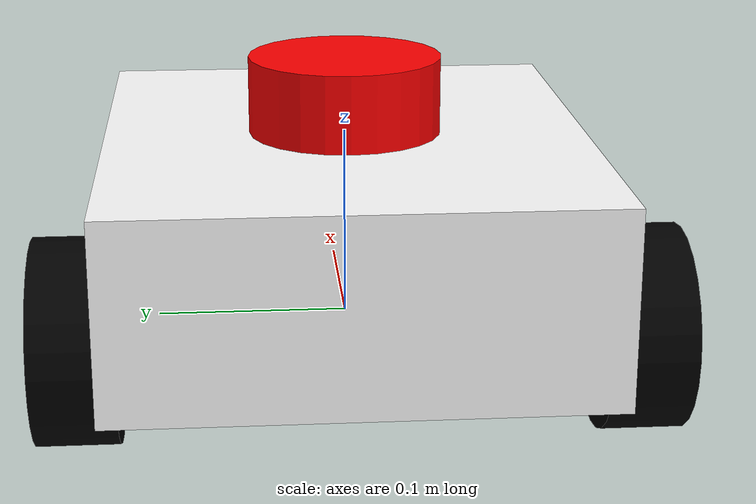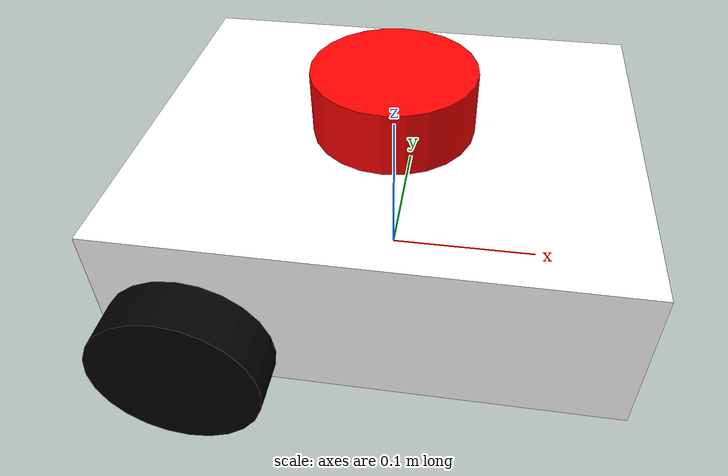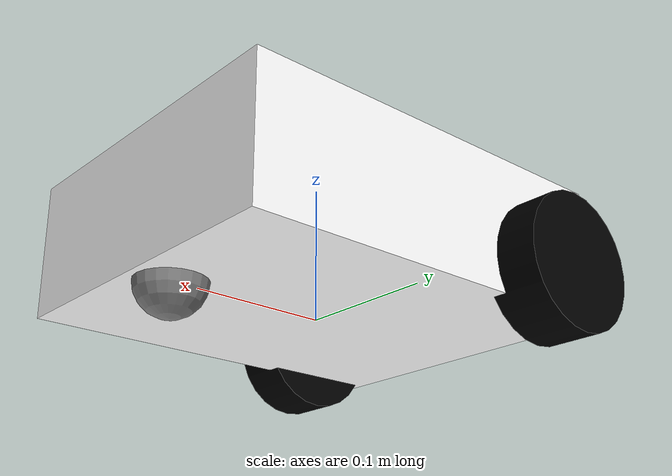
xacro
<?xml version="1.0"?>
<robot name="my_bot_no_encoder" xmlns:xacro="http://www.ros.org/wiki/xacro">

  <xacro:include filename="$(find my_bot)/description/inertial_macros.xacro"/>

  <!-- ═══════════════════════════════════════════════
       PROPERTIES
  ═══════════════════════════════════════════════ -->
  <!-- Chassis -->
  <xacro:property name="chassis_length"   value="0.30"/>
  <xacro:property name="chassis_width"    value="0.25"/>
  <xacro:property name="chassis_height"   value="0.10"/>
  <xacro:property name="chassis_mass"     value="1.5"/>

  <!-- Drive wheels -->
  <xacro:property name="wheel_radius"     value="0.05"/>
  <xacro:property name="wheel_width"      value="0.04"/>
  <xacro:property name="wheel_mass"       value="0.2"/>
  <xacro:property name="wheel_offset_x"  value="-0.1"/>
  <xacro:property name="wheel_offset_y"  value="0.135"/>   <!-- half chassis_width + wheel_width/2 -->
  <xacro:property name="wheel_offset_z"  value="-0.025"/>  <!-- chassis bottom - wheel_radius -->

  <!-- Caster -->
  <xacro:property name="caster_radius"    value="0.025"/>
  <xacro:property name="caster_mass"      value="0.05"/>
  <xacro:property name="caster_offset_x" value="0.12"/>
  <xacro:property name="caster_offset_z" value="-0.05"/>   <!-- -(wheel_radius - caster_radius) -->

  <!-- ═══════════════════════════════════════════════
       MATERIALS
  ═══════════════════════════════════════════════ -->
  <material name="white">
    <color rgba="1 1 1 1"/>
  </material>
  <material name="blue">
    <color rgba="0.2 0.2 1 1"/>
  </material>
  <material name="black">
    <color rgba="0 0 0 1"/>
  </material>
  <material name="red">
    <color rgba="1 0 0 1"/>
  </material>
  <material name="grey">
    <color rgba="0.5 0.5 0.5 1"/>
  </material>

  <!-- ═══════════════════════════════════════════════
       BASE FOOTPRINT  (ground-projected origin)
  ═══════════════════════════════════════════════ -->
  <link name="base_footprint"/>

  <joint name="base_footprint_joint" type="fixed">
    <parent link="base_footprint"/>
    <child  link="base_link"/>
    <!-- base_link origin sits at wheel-centre height above the ground -->
    <origin xyz="0 0 ${wheel_radius}" rpy="0 0 0"/>
  </joint>

  <!-- ═══════════════════════════════════════════════
       BASE LINK  (chassis)
  ═══════════════════════════════════════════════ -->
  <link name="base_link">
    <visual>
      <origin xyz="0 0 0" rpy="0 0 0"/>
      <geometry>
        <box size="${chassis_length} ${chassis_width} ${chassis_height}"/>
      </geometry>
      <material name="white"/>
    </visual>
    <collision>
      <origin xyz="0 0 0" rpy="0 0 0"/>
      <geometry>
        <box size="${chassis_length} ${chassis_width} ${chassis_height}"/>
      </geometry>
    </collision>
    <xacro:box_inertia m="${chassis_mass}"
                       l="${chassis_length}"
                       w="${chassis_width}"
                       h="${chassis_height}"/>
  </link>

  <gazebo reference="base_link">
    <material>Gazebo/White</material>
  </gazebo>

  <xacro:macro name="drive_wheel" params="prefix reflect">

    <joint name="${prefix}_wheel_joint" type="continuous">
      <parent link="base_link"/>
      <child  link="${prefix}_wheel_link"/>
      <origin xyz="${wheel_offset_x} ${reflect * wheel_offset_y} ${wheel_offset_z}"
              rpy="${-pi/2} 0 0"/>
      <axis xyz="0 0 1"/>
      <dynamics damping="0.01" friction="0.1"/>
    </joint>

    <link name="${prefix}_wheel_link">
      <visual>
        <geometry>
          <cylinder radius="${wheel_radius}" length="${wheel_width}"/>
        </geometry>
        <material name="black"/>
      </visual>
      <collision>
        <geometry>
          <cylinder radius="${wheel_radius}" length="${wheel_width}"/>
        </geometry>
      </collision>
      <xacro:cylinder_inertia m="${wheel_mass}"
                              r="${wheel_radius}"
                              h="${wheel_width}"/>
    </link>

    <gazebo reference="${prefix}_wheel_link">
      <material>Gazebo/Black</material>
      <mu1>0.8</mu1>
      <mu2>0.8</mu2>
      <kp>1e6</kp>
      <kd>1.0</kd>
    </gazebo>

  </xacro:macro>

  <xacro:drive_wheel prefix="left"  reflect="1"/>
  <xacro:drive_wheel prefix="right" reflect="-1"/>

  <!-- ═══════════════════════════════════════════════
       CASTER WHEEL  (at the FRONT, +x)
  ═══════════════════════════════════════════════ -->
  <joint name="caster_wheel_joint" type="fixed">
    <parent link="base_link"/>
    <child  link="caster_wheel_link"/>
    <origin xyz="${caster_offset_x} 0 ${caster_offset_z}" rpy="0 0 0"/>
  </joint>

  <link name="caster_wheel_link">
    <visual>
      <geometry>
        <sphere radius="${caster_radius}"/>
      </geometry>
      <material name="grey"/>
    </visual>
    <collision>
      <geometry>
        <sphere radius="${caster_radius}"/>
      </geometry>
    </collision>
    <xacro:sphere_inertia m="${caster_mass}" r="${caster_radius}"/>
  </link>

  <gazebo reference="caster_wheel_link">
    <material>Gazebo/Grey</material>
    <!-- Near-zero friction so it doesn't fight the diff drive -->
    <mu1>0.001</mu1>
    <mu2>0.001</mu2>
  </gazebo>

  <!-- ═══════════════════════════════════════════════
       LIDAR
  ═══════════════════════════════════════════════ -->
  <joint name="laser_joint" type="fixed">
    <parent link="base_link"/>
    <child  link="laser_frame"/>
    <origin xyz="0 0 0.07" rpy="0 0 0"/>
  </joint>

  <link name="laser_frame">
    <visual>
      <geometry>
        <cylinder radius="0.05" length="0.04"/>
      </geometry>
      <material name="red"/>
    </visual>
    <collision>
      <geometry>
        <cylinder radius="0.05" length="0.04"/>
      </geometry>
    </collision>
    <xacro:cylinder_inertia m="0.1" h="0.04" r="0.05"/>
  </link>

  <gazebo reference="laser_frame">
    <sensor name="laser" type="gpu_lidar">
      <always_on>true</always_on>
      <visualize>true</visualize>
      <update_rate>10</update_rate>
      <topic>/scan</topic>
      <lidar>
        <scan>
          <horizontal>
            <samples>360</samples>
            <resolution>1</resolution>
            <min_angle>-3.14159</min_angle>
            <max_angle>3.14159</max_angle>
          </horizontal>
        </scan>
        <range>
          <min>0.05</min>
          <max>12.0</max>
          <resolution>0.01</resolution>
        </range>
      </lidar>
      <gz_frame_id>laser_frame</gz_frame_id>
    </sensor>
  </gazebo>

  <gazebo>
    <plugin filename="gz-sim-diff-drive-system"
            name="gz::sim::systems::DiffDrive">
      <left_joint>left_wheel_joint</left_joint>
      <right_joint>right_wheel_joint</right_joint>
      <wheel_separation>0.27</wheel_separation>
      <wheel_radius>0.05</wheel_radius>

      <!-- Acceleration limits — gentle ramps, no sudden jerks -->
      <max_linear_acceleration>0.3</max_linear_acceleration>
      <min_linear_acceleration>-0.3</min_linear_acceleration>
      <max_angular_acceleration>0.6</max_angular_acceleration>
      <min_angular_acceleration>-0.6</min_angular_acceleration>

      <!-- Velocity limits — significantly reduced for stable scan matching -->
      <max_linear_velocity>0.15</max_linear_velocity>
      <min_linear_velocity>-0.15</min_linear_velocity>
      <max_angular_velocity>0.4</max_angular_velocity>
      <min_angular_velocity>-0.4</min_angular_velocity>

      <!-- Topic the plugin listens on for velocity commands -->
      <topic>cmd_vel</topic>

      <odom_publish_frequency>0</odom_publish_frequency>
      <frame_id>odom</frame_id>
      <child_frame_id>base_footprint</child_frame_id>
    </plugin>
  </gazebo>

</robot>

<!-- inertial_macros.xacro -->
<robot xmlns:xacro="http://www.ros.org/wiki/xacro">

  <!-- Box inertia: l=x, w=y, h=z -->
  <xacro:macro name="box_inertia" params="m l w h">
    <inertial>
      <origin xyz="0 0 0" rpy="0 0 0"/>
      <mass value="${m}"/>
      <inertia
        ixx="${(m/12.0)*(w*w + h*h)}" ixy="0" ixz="0"
        iyy="${(m/12.0)*(l*l + h*h)}" iyz="0"
        izz="${(m/12.0)*(l*l + w*w)}"/>
    </inertial>
  </xacro:macro>

  <!-- Cylinder inertia: rotation axis = z -->
  <xacro:macro name="cylinder_inertia" params="m r h">
    <inertial>
      <origin xyz="0 0 0" rpy="0 0 0"/>
      <mass value="${m}"/>
      <inertia
        ixx="${(m/12.0)*(3*r*r + h*h)}" ixy="0" ixz="0"
        iyy="${(m/12.0)*(3*r*r + h*h)}" iyz="0"
        izz="${(m/2.0)*r*r}"/>
    </inertial>
  </xacro:macro>

  <!-- Sphere inertia -->
  <xacro:macro name="sphere_inertia" params="m r">
    <inertial>
      <origin xyz="0 0 0" rpy="0 0 0"/>
      <mass value="${m}"/>
      <inertia
        ixx="${(2.0/5.0)*m*r*r}" ixy="0" ixz="0"
        iyy="${(2.0/5.0)*m*r*r}" iyz="0"
        izz="${(2.0/5.0)*m*r*r}"/>
    </inertial>
  </xacro:macro>

</robot>
